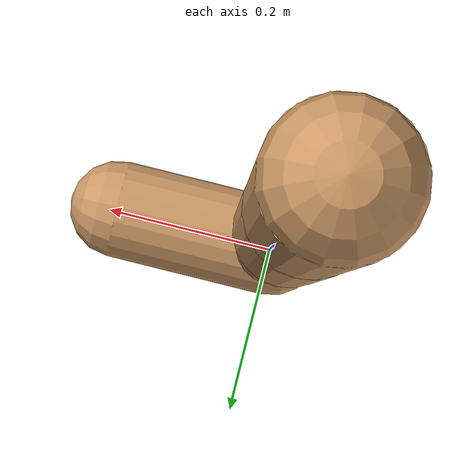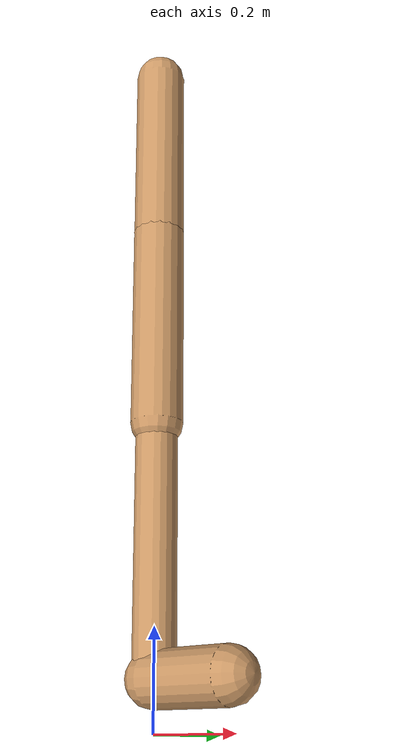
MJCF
<mujoco model="walker2d">
  <compiler angle="degree" coordinate="global" inertiafromgeom="true" />
  <default>
    <joint armature="0.01" damping=".1" limited="true" />
    <geom conaffinity="0" condim="3" contype="1" density="1000" friction="0.8 .1 .1" rgba="0.8 0.6 .4 1" />
  </default>
  <option integrator="RK4" timestep="0.002" />
  <worldbody>

    <body name="torso" pos="0 0 -0.02339686884908706">
      <joint armature="0" axis="1 0 0" damping="0" limited="false" name="ignorex" pos="0 0 0" stiffness="0" type="slide" />
      <joint armature="0" axis="0 0 1" damping="0" limited="false" name="ignorez" pos="0 0 0" ref="1.25" stiffness="0" type="slide" />
      <joint armature="0" axis="0 1 0" damping="0" limited="false" name="ignorey" pos="0 0 0" stiffness="0" type="hinge" />
      <geom fromto="0 0 1.45 0 0 1.05" name="torso_geom" size="0.05448675324471295" type="capsule" />
      <body name="thigh">
        <joint axis="0 -1 0" name="thigh_joint" pos="0 0 1.05" range="-150 0" type="hinge" />
        <geom fromto="0.0 0.0 1.05 0.0 0.0 0.6110827273495676" name="thigh_geom" size="0.05487826217356212" type="capsule" />
        <body name="leg" pos="0.0 0.0 0.011082727349567612">
          <joint axis="0 -1 0" name="leg_joint" pos="0 0 0.6" range="-150 0" type="hinge" />
          <geom fromto="0.0 0.0 0.6 0.0 0.0 0.11231414149951952" name="leg_geom" size="0.0439026097388497" type="capsule" />
          <body name="foot" pos="0.0 0.0 0.01231414149951951">
            <joint axis="0 -1 0" name="foot_joint" pos="0 0 0.1" range="-45 45" type="hinge" />
            <geom fromto="0.0 0.0 0.1 0.18609009489030998 0.0 0.1" name="foot_geom" size="0.056578386557136776" type="capsule" />
          </body>
        </body>
      </body>

      <body name="thigh_left">
        <joint axis="0 -1 0" name="thigh_left_joint" pos="0 0 1.05" range="-150 0" type="hinge" />
        <geom fromto="0.0 0.0 1.05 0.0 0.0 0.6110827273495676" name="thigh_left_geom" rgba=".7 .3 .6 1" size="0.05487826217356212" type="capsule" />
        <body name="leg_left" pos="0.0 0.0 0.011082727349567612">
          <joint axis="0 -1 0" name="leg_left_joint" pos="0 0 0.6" range="-150 0" type="hinge" />
          <geom fromto="0.0 0.0 0.6 0.0 0.0 0.11231414149951952" name="leg_left_geom" rgba=".7 .3 .6 1" size="0.0439026097388497" type="capsule" />
          <body name="foot_left" pos="0.0 0.0 0.01231414149951951">
            <joint axis="0 -1 0" name="foot_left_joint" pos="0 0 0.1" range="-45 45" type="hinge" />
            <geom fromto="0.0 0.0 0.1 0.18609009489030998 0.0 0.1" name="foot_left_geom" rgba=".7 .3 .6 1" size="0.056578386557136776" type="capsule" />
          </body>
        </body>
      </body>
    </body>
  </worldbody>
  <actuator>

    <motor ctrllimited="true" ctrlrange="-1.0 1.0" gear="100" joint="thigh_joint" />
    <motor ctrllimited="true" ctrlrange="-1.0 1.0" gear="100" joint="leg_joint" />
    <motor ctrllimited="true" ctrlrange="-1.0 1.0" gear="100" joint="foot_joint" />
    <motor ctrllimited="true" ctrlrange="-1.0 1.0" gear="100" joint="thigh_left_joint" />
    <motor ctrllimited="true" ctrlrange="-1.0 1.0" gear="100" joint="leg_left_joint" />
    <motor ctrllimited="true" ctrlrange="-1.0 1.0" gear="100" joint="foot_left_joint" />

  </actuator>
</mujoco>
